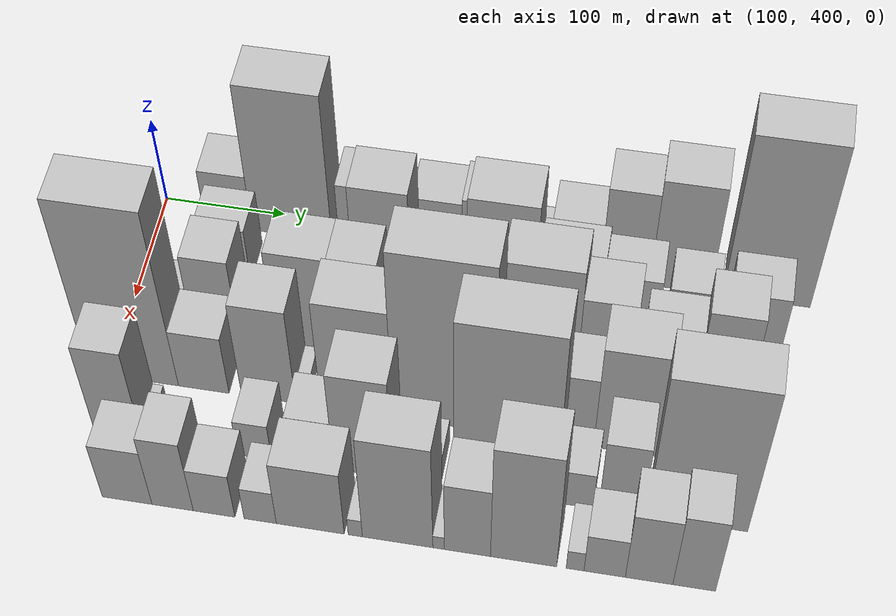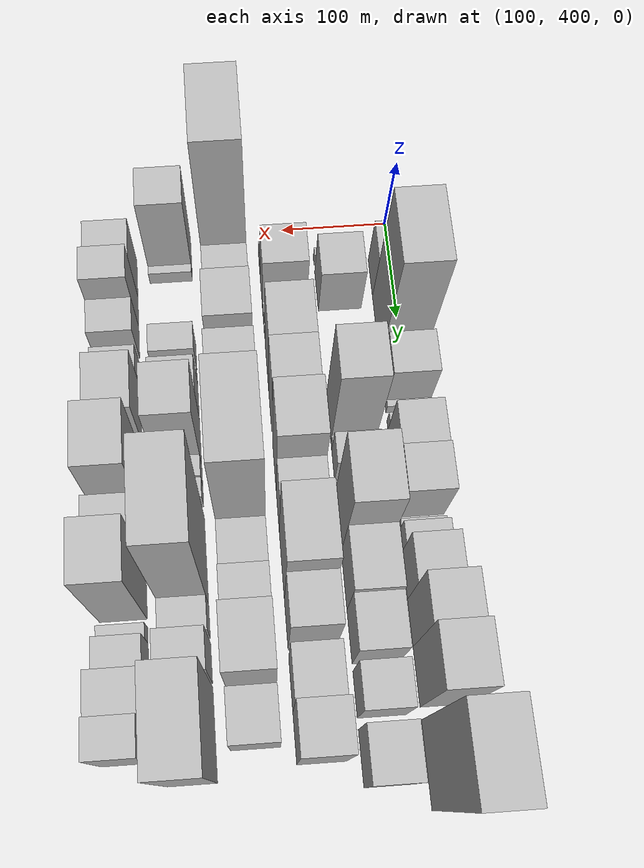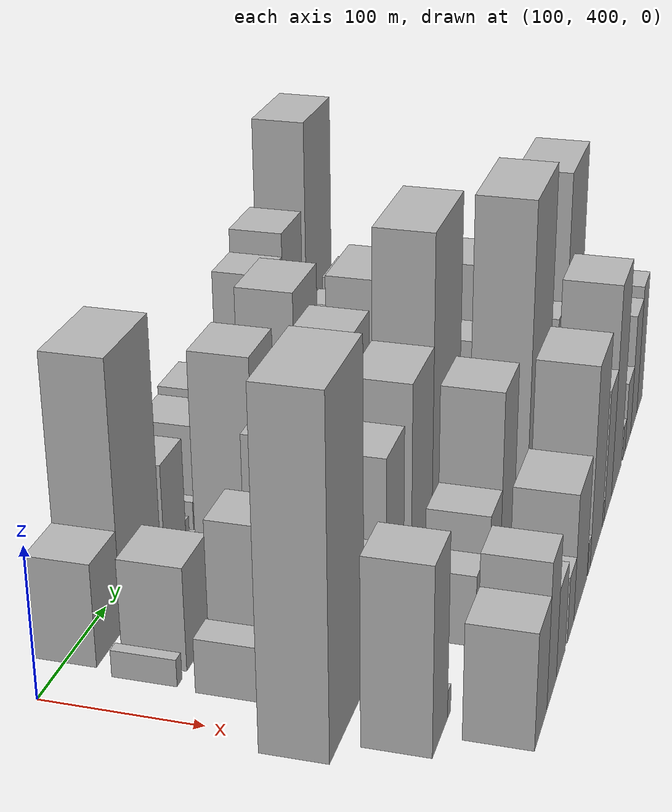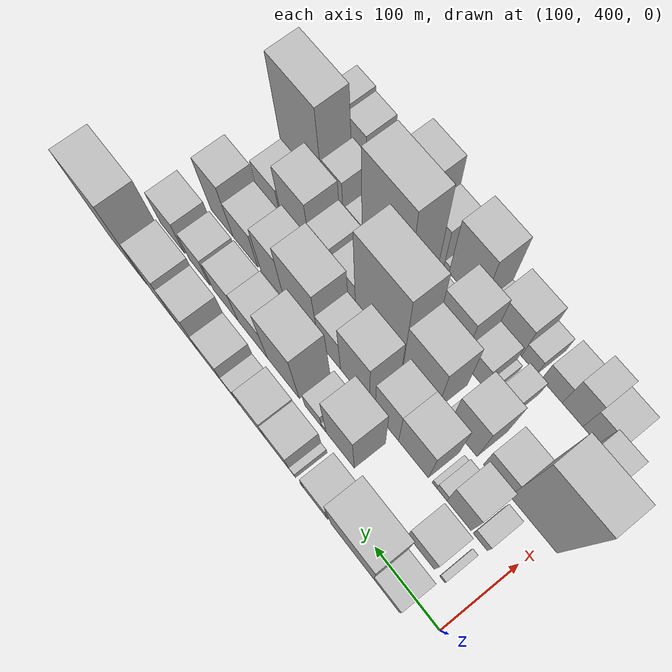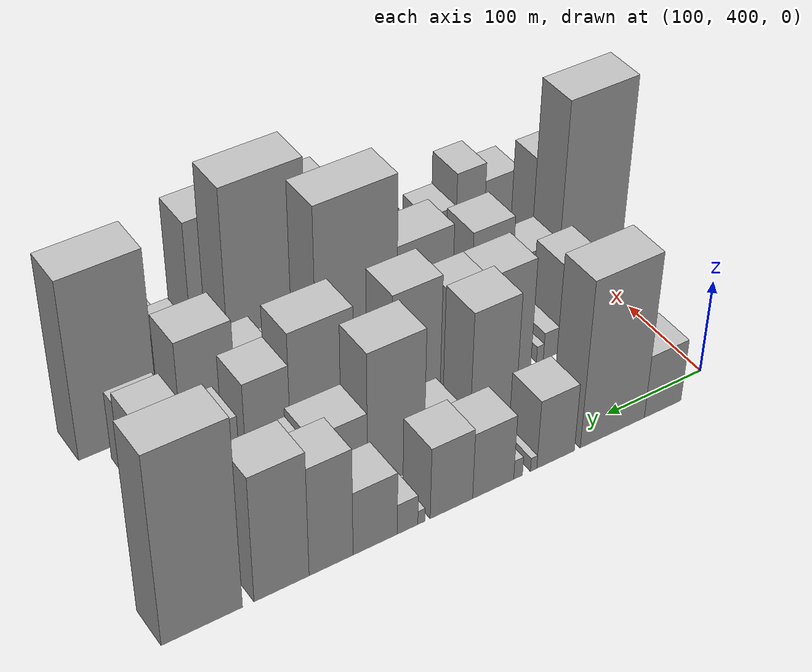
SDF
<sdf version="1.6">
 <world name="default">
  <model name="building_39">
   <static>1</static>
   <pose>100.0000 457.2777 0 0.000000 0.000000 0.000000</pose>
   <link name="link">
    <pose>0 0 34.50 0 0 0</pose>
    <collision name="collision"><geometry><box><size>40.0000 39.1835 69.0000</size></box></geometry></collision>
    <visual name="visual">
     <cast_shadows>0</cast_shadows>
     <geometry><box><size>40.0000 39.1835 69.0000</size></box></geometry>
     <material>
      <script>
       <uri>model://HANNAS_wall/materials/scripts</uri>
       <uri>model://HANNAS_wall/materials/textures</uri>
       <name>vrc/HANNAS_wall</name>
      </script>
     </material>
    </visual>
   </link>
  </model>
  <model name="building_40">
   <static>1</static>
   <pose>100.0000 510.3167 0 0.000000 0.000000 0.000000</pose>
   <link name="link">
    <pose>0 0 90.00 0 0 0</pose>
    <collision name="collision"><geometry><box><size>40.0000 66.8946 180.0000</size></box></geometry></collision>
    <visual name="visual">
     <cast_shadows>0</cast_shadows>
     <geometry><box><size>40.0000 66.8946 180.0000</size></box></geometry>
     <material>
      <script>
       <uri>model://HANNAS_wall/materials/scripts</uri>
       <uri>model://HANNAS_wall/materials/textures</uri>
       <name>vrc/HANNAS_wall</name>
      </script>
     </material>
    </visual>
   </link>
  </model>
  <model name="building_41">
   <static>1</static>
   <pose>100.0000 568.8405 0 0.000000 0.000000 0.000000</pose>
   <link name="link">
    <pose>0 0 37.50 0 0 0</pose>
    <collision name="collision"><geometry><box><size>40.0000 38.1529 75.0000</size></box></geometry></collision>
    <visual name="visual">
     <cast_shadows>0</cast_shadows>
     <geometry><box><size>40.0000 38.1529 75.0000</size></box></geometry>
     <material>
      <script>
       <uri>model://HANNAS_wall/materials/scripts</uri>
       <uri>model://HANNAS_wall/materials/textures</uri>
       <name>vrc/HANNAS_wall</name>
      </script>
     </material>
    </visual>
   </link>
  </model>
  <model name="building_42">
   <static>1</static>
   <pose>100.0000 591.0916 0 0.000000 0.000000 0.000000</pose>
   <link name="link">
    <pose>0 0 7.50 0 0 0</pose>
    <collision name="collision"><geometry><box><size>40.0000 6.3492 15.0000</size></box></geometry></collision>
    <visual name="visual">
     <cast_shadows>0</cast_shadows>
     <geometry><box><size>40.0000 6.3492 15.0000</size></box></geometry>
     <material>
      <script>
       <uri>model://HANNAS_wall/materials/scripts</uri>
       <uri>model://HANNAS_wall/materials/textures</uri>
       <name>vrc/HANNAS_wall</name>
      </script>
     </material>
    </visual>
   </link>
  </model>
  <model name="building_43">
   <static>1</static>
   <pose>100.0000 606.6588 0 0.000000 0.000000 0.000000</pose>
   <link name="link">
    <pose>0 0 10.50 0 0 0</pose>
    <collision name="collision"><geometry><box><size>40.0000 8.7851 21.0000</size></box></geometry></collision>
    <visual name="visual">
     <cast_shadows>0</cast_shadows>
     <geometry><box><size>40.0000 8.7851 21.0000</size></box></geometry>
     <material>
      <script>
       <uri>model://HANNAS_wall/materials/scripts</uri>
       <uri>model://HANNAS_wall/materials/textures</uri>
       <name>vrc/HANNAS_wall</name>
      </script>
     </material>
    </visual>
   </link>
  </model>
  <model name="building_44">
   <static>1</static>
   <pose>100.0000 631.2210 0 0.000000 0.000000 0.000000</pose>
   <link name="link">
    <pose>0 0 36.00 0 0 0</pose>
    <collision name="collision"><geometry><box><size>40.0000 40.3394 72.0000</size></box></geometry></collision>
    <visual name="visual">
     <cast_shadows>0</cast_shadows>
     <geometry><box><size>40.0000 40.3394 72.0000</size></box></geometry>
     <material>
      <script>
       <uri>model://HANNAS_wall/materials/scripts</uri>
       <uri>model://HANNAS_wall/materials/textures</uri>
       <name>vrc/HANNAS_wall</name>
      </script>
     </material>
    </visual>
   </link>
  </model>
  <model name="building_45">
   <static>1</static>
   <pose>100.0000 671.8020 0 0.000000 0.000000 0.000000</pose>
   <link name="link">
    <pose>0 0 39.00 0 0 0</pose>
    <collision name="collision"><geometry><box><size>40.0000 40.8228 78.0000</size></box></geometry></collision>
    <visual name="visual">
     <cast_shadows>0</cast_shadows>
     <geometry><box><size>40.0000 40.8228 78.0000</size></box></geometry>
     <material>
      <script>
       <uri>model://HANNAS_wall/materials/scripts</uri>
       <uri>model://HANNAS_wall/materials/textures</uri>
       <name>vrc/HANNAS_wall</name>
      </script>
     </material>
    </visual>
   </link>
  </model>
  <model name="building_46">
   <static>1</static>
   <pose>100.0000 700.5669 0 0.000000 0.000000 0.000000</pose>
   <link name="link">
    <pose>0 0 7.50 0 0 0</pose>
    <collision name="collision"><geometry><box><size>40.0000 6.7070 15.0000</size></box></geometry></collision>
    <visual name="visual">
     <cast_shadows>0</cast_shadows>
     <geometry><box><size>40.0000 6.7070 15.0000</size></box></geometry>
     <material>
      <script>
       <uri>model://HANNAS_wall/materials/scripts</uri>
       <uri>model://HANNAS_wall/materials/textures</uri>
       <name>vrc/HANNAS_wall</name>
      </script>
     </material>
    </visual>
   </link>
  </model>
  <model name="building_47">
   <static>1</static>
   <pose>100.0000 713.6138 0 0.000000 0.000000 0.000000</pose>
   <link name="link">
    <pose>0 0 16.50 0 0 0</pose>
    <collision name="collision"><geometry><box><size>40.0000 19.3869 33.0000</size></box></geometry></collision>
    <visual name="visual">
     <cast_shadows>0</cast_shadows>
     <geometry><box><size>40.0000 19.3869 33.0000</size></box></geometry>
     <material>
      <script>
       <uri>model://HANNAS_wall/materials/scripts</uri>
       <uri>model://HANNAS_wall/materials/textures</uri>
       <name>vrc/HANNAS_wall</name>
      </script>
     </material>
    </visual>
   </link>
  </model>
  <model name="building_48">
   <static>1</static>
   <pose>100.0000 743.8148 0 0.000000 0.000000 0.000000</pose>
   <link name="link">
    <pose>0 0 34.50 0 0 0</pose>
    <collision name="collision"><geometry><box><size>40.0000 41.0151 69.0000</size></box></geometry></collision>
    <visual name="visual">
     <cast_shadows>0</cast_shadows>
     <geometry><box><size>40.0000 41.0151 69.0000</size></box></geometry>
     <material>
      <script>
       <uri>model://HANNAS_wall/materials/scripts</uri>
       <uri>model://HANNAS_wall/materials/textures</uri>
       <name>vrc/HANNAS_wall</name>
      </script>
     </material>
    </visual>
   </link>
  </model>
  <model name="building_49">
   <static>1</static>
   <pose>100.0000 784.2619 0 0.000000 0.000000 0.000000</pose>
   <link name="link">
    <pose>0 0 58.50 0 0 0</pose>
    <collision name="collision"><geometry><box><size>40.0000 39.8791 117.0000</size></box></geometry></collision>
    <visual name="visual">
     <cast_shadows>0</cast_shadows>
     <geometry><box><size>40.0000 39.8791 117.0000</size></box></geometry>
     <material>
      <script>
       <uri>model://HANNAS_wall/materials/scripts</uri>
       <uri>model://HANNAS_wall/materials/textures</uri>
       <name>vrc/HANNAS_wall</name>
      </script>
     </material>
    </visual>
   </link>
  </model>
  <model name="building_50">
   <static>1</static>
   <pose>100.0000 828.6385 0 0.000000 0.000000 0.000000</pose>
   <link name="link">
    <pose>0 0 67.50 0 0 0</pose>
    <collision name="collision"><geometry><box><size>40.0000 48.8741 135.0000</size></box></geometry></collision>
    <visual name="visual">
     <cast_shadows>0</cast_shadows>
     <geometry><box><size>40.0000 48.8741 135.0000</size></box></geometry>
     <material>
      <script>
       <uri>model://HANNAS_wall/materials/scripts</uri>
       <uri>model://HANNAS_wall/materials/textures</uri>
       <name>vrc/HANNAS_wall</name>
      </script>
     </material>
    </visual>
   </link>
  </model>
  <model name="building_51">
   <static>1</static>
   <pose>100.0000 897.8823 0 0.000000 0.000000 0.000000</pose>
   <link name="link">
    <pose>0 0 100.50 0 0 0</pose>
    <collision name="collision"><geometry><box><size>40.0000 69.6135 201.0000</size></box></geometry></collision>
    <visual name="visual">
     <cast_shadows>0</cast_shadows>
     <geometry><box><size>40.0000 69.6135 201.0000</size></box></geometry>
     <material>
      <script>
       <uri>model://HANNAS_wall/materials/scripts</uri>
       <uri>model://HANNAS_wall/materials/textures</uri>
       <name>vrc/HANNAS_wall</name>
      </script>
     </material>
    </visual>
   </link>
  </model>
  <model name="building_84">
   <static>1</static>
   <pose>152.0000 435.3080 0 0.000000 0.000000 0.000000</pose>
   <link name="link">
    <pose>0 0 9.00 0 0 0</pose>
    <collision name="collision"><geometry><box><size>40.0000 8.0449 18.0000</size></box></geometry></collision>
    <visual name="visual">
     <cast_shadows>0</cast_shadows>
     <geometry><box><size>40.0000 8.0449 18.0000</size></box></geometry>
     <material>
      <script>
       <uri>model://HANNAS_wall/materials/scripts</uri>
       <uri>model://HANNAS_wall/materials/textures</uri>
       <name>vrc/HANNAS_wall</name>
      </script>
     </material>
    </visual>
   </link>
  </model>
  <model name="building_85">
   <static>1</static>
   <pose>152.0000 467.7956 0 0.000000 0.000000 0.000000</pose>
   <link name="link">
    <pose>0 0 34.50 0 0 0</pose>
    <collision name="collision"><geometry><box><size>40.0000 40.9304 69.0000</size></box></geometry></collision>
    <visual name="visual">
     <cast_shadows>0</cast_shadows>
     <geometry><box><size>40.0000 40.9304 69.0000</size></box></geometry>
     <material>
      <script>
       <uri>model://HANNAS_wall/materials/scripts</uri>
       <uri>model://HANNAS_wall/materials/textures</uri>
       <name>vrc/HANNAS_wall</name>
      </script>
     </material>
    </visual>
   </link>
  </model>
  <model name="building_86">
   <static>1</static>
   <pose>152.0000 596.1781 0 0.000000 0.000000 0.000000</pose>
   <link name="link">
    <pose>0 0 72.00 0 0 0</pose>
    <collision name="collision"><geometry><box><size>40.0000 45.9448 144.0000</size></box></geometry></collision>
    <visual name="visual">
     <cast_shadows>0</cast_shadows>
     <geometry><box><size>40.0000 45.9448 144.0000</size></box></geometry>
     <material>
      <script>
       <uri>model://HANNAS_wall/materials/scripts</uri>
       <uri>model://HANNAS_wall/materials/textures</uri>
       <name>vrc/HANNAS_wall</name>
      </script>
     </material>
    </visual>
   </link>
  </model>
  <model name="building_87">
   <static>1</static>
   <pose>152.0000 622.9566 0 0.000000 0.000000 0.000000</pose>
   <link name="link">
    <pose>0 0 9.00 0 0 0</pose>
    <collision name="collision"><geometry><box><size>40.0000 7.6122 18.0000</size></box></geometry></collision>
    <visual name="visual">
     <cast_shadows>0</cast_shadows>
     <geometry><box><size>40.0000 7.6122 18.0000</size></box></geometry>
     <material>
      <script>
       <uri>model://HANNAS_wall/materials/scripts</uri>
       <uri>model://HANNAS_wall/materials/textures</uri>
       <name>vrc/HANNAS_wall</name>
      </script>
     </material>
    </visual>
   </link>
  </model>
  <model name="building_88">
   <static>1</static>
   <pose>152.0000 640.9174 0 0.000000 0.000000 0.000000</pose>
   <link name="link">
    <pose>0 0 24.00 0 0 0</pose>
    <collision name="collision"><geometry><box><size>40.0000 28.3094 48.0000</size></box></geometry></collision>
    <visual name="visual">
     <cast_shadows>0</cast_shadows>
     <geometry><box><size>40.0000 28.3094 48.0000</size></box></geometry>
     <material>
      <script>
       <uri>model://HANNAS_wall/materials/scripts</uri>
       <uri>model://HANNAS_wall/materials/textures</uri>
       <name>vrc/HANNAS_wall</name>
      </script>
     </material>
    </visual>
   </link>
  </model>
  <model name="building_89">
   <static>1</static>
   <pose>152.0000 691.3512 0 0.000000 0.000000 0.000000</pose>
   <link name="link">
    <pose>0 0 75.00 0 0 0</pose>
    <collision name="collision"><geometry><box><size>40.0000 54.5581 150.0000</size></box></geometry></collision>
    <visual name="visual">
     <cast_shadows>0</cast_shadows>
     <geometry><box><size>40.0000 54.5581 150.0000</size></box></geometry>
     <material>
      <script>
       <uri>model://HANNAS_wall/materials/scripts</uri>
       <uri>model://HANNAS_wall/materials/textures</uri>
       <name>vrc/HANNAS_wall</name>
      </script>
     </material>
    </visual>
   </link>
  </model>
  <model name="building_90">
   <static>1</static>
   <pose>152.0000 744.2227 0 0.000000 0.000000 0.000000</pose>
   <link name="link">
    <pose>0 0 43.50 0 0 0</pose>
    <collision name="collision"><geometry><box><size>40.0000 51.1851 87.0000</size></box></geometry></collision>
    <visual name="visual">
     <cast_shadows>0</cast_shadows>
     <geometry><box><size>40.0000 51.1851 87.0000</size></box></geometry>
     <material>
      <script>
       <uri>model://HANNAS_wall/materials/scripts</uri>
       <uri>model://HANNAS_wall/materials/textures</uri>
       <name>vrc/HANNAS_wall</name>
      </script>
     </material>
    </visual>
   </link>
  </model>
  <model name="building_91">
   <static>1</static>
   <pose>152.0000 792.2395 0 0.000000 0.000000 0.000000</pose>
   <link name="link">
    <pose>0 0 39.00 0 0 0</pose>
    <collision name="collision"><geometry><box><size>40.0000 44.8485 78.0000</size></box></geometry></collision>
    <visual name="visual">
     <cast_shadows>0</cast_shadows>
     <geometry><box><size>40.0000 44.8485 78.0000</size></box></geometry>
     <material>
      <script>
       <uri>model://HANNAS_wall/materials/scripts</uri>
       <uri>model://HANNAS_wall/materials/textures</uri>
       <name>vrc/HANNAS_wall</name>
      </script>
     </material>
    </visual>
   </link>
  </model>
  <model name="building_92">
   <static>1</static>
   <pose>152.0000 839.3952 0 0.000000 0.000000 0.000000</pose>
   <link name="link">
    <pose>0 0 36.00 0 0 0</pose>
    <collision name="collision"><geometry><box><size>40.0000 37.4629 72.0000</size></box></geometry></collision>
    <visual name="visual">
     <cast_shadows>0</cast_shadows>
     <geometry><box><size>40.0000 37.4629 72.0000</size></box></geometry>
     <material>
      <script>
       <uri>model://HANNAS_wall/materials/scripts</uri>
       <uri>model://HANNAS_wall/materials/textures</uri>
       <name>vrc/HANNAS_wall</name>
      </script>
     </material>
    </visual>
   </link>
  </model>
  <model name="building_93">
   <static>1</static>
   <pose>152.0000 889.5657 0 0.000000 0.000000 0.000000</pose>
   <link name="link">
    <pose>0 0 39.00 0 0 0</pose>
    <collision name="collision"><geometry><box><size>40.0000 44.8781 78.0000</size></box></geometry></collision>
    <visual name="visual">
     <cast_shadows>0</cast_shadows>
     <geometry><box><size>40.0000 44.8781 78.0000</size></box></geometry>
     <material>
      <script>
       <uri>model://HANNAS_wall/materials/scripts</uri>
       <uri>model://HANNAS_wall/materials/textures</uri>
       <name>vrc/HANNAS_wall</name>
      </script>
     </material>
    </visual>
   </link>
  </model>
  <model name="building_132">
   <static>1</static>
   <pose>204.0000 439.4409 0 0.000000 0.000000 0.000000</pose>
   <link name="link">
    <pose>0 0 18.00 0 0 0</pose>
    <collision name="collision"><geometry><box><size>40.0000 21.4841 36.0000</size></box></geometry></collision>
    <visual name="visual">
     <cast_shadows>0</cast_shadows>
     <geometry><box><size>40.0000 21.4841 36.0000</size></box></geometry>
     <material>
      <script>
       <uri>model://HANNAS_wall/materials/scripts</uri>
       <uri>model://HANNAS_wall/materials/textures</uri>
       <name>vrc/HANNAS_wall</name>
      </script>
     </material>
    </visual>
   </link>
  </model>
  <model name="building_133">
   <static>1</static>
   <pose>204.0000 471.8553 0 0.000000 0.000000 0.000000</pose>
   <link name="link">
    <pose>0 0 49.50 0 0 0</pose>
    <collision name="collision"><geometry><box><size>40.0000 37.3447 99.0000</size></box></geometry></collision>
    <visual name="visual">
     <cast_shadows>0</cast_shadows>
     <geometry><box><size>40.0000 37.3447 99.0000</size></box></geometry>
     <material>
      <script>
       <uri>model://HANNAS_wall/materials/scripts</uri>
       <uri>model://HANNAS_wall/materials/textures</uri>
       <name>vrc/HANNAS_wall</name>
      </script>
     </material>
    </visual>
   </link>
  </model>
  <model name="building_134">
   <static>1</static>
   <pose>204.0000 498.2912 0 0.000000 0.000000 0.000000</pose>
   <link name="link">
    <pose>0 0 15.00 0 0 0</pose>
    <collision name="collision"><geometry><box><size>40.0000 15.5270 30.0000</size></box></geometry></collision>
    <visual name="visual">
     <cast_shadows>0</cast_shadows>
     <geometry><box><size>40.0000 15.5270 30.0000</size></box></geometry>
     <material>
      <script>
       <uri>model://HANNAS_wall/materials/scripts</uri>
       <uri>model://HANNAS_wall/materials/textures</uri>
       <name>vrc/HANNAS_wall</name>
      </script>
     </material>
    </visual>
   </link>
  </model>
  <model name="building_135">
   <static>1</static>
   <pose>204.0000 509.7544 0 0.000000 0.000000 0.000000</pose>
   <link name="link">
    <pose>0 0 9.00 0 0 0</pose>
    <collision name="collision"><geometry><box><size>40.0000 7.3995 18.0000</size></box></geometry></collision>
    <visual name="visual">
     <cast_shadows>0</cast_shadows>
     <geometry><box><size>40.0000 7.3995 18.0000</size></box></geometry>
     <material>
      <script>
       <uri>model://HANNAS_wall/materials/scripts</uri>
       <uri>model://HANNAS_wall/materials/textures</uri>
       <name>vrc/HANNAS_wall</name>
      </script>
     </material>
    </visual>
   </link>
  </model>
  <model name="building_136">
   <static>1</static>
   <pose>204.0000 543.1903 0 0.000000 0.000000 0.000000</pose>
   <link name="link">
    <pose>0 0 60.00 0 0 0</pose>
    <collision name="collision"><geometry><box><size>40.0000 47.4723 120.0000</size></box></geometry></collision>
    <visual name="visual">
     <cast_shadows>0</cast_shadows>
     <geometry><box><size>40.0000 47.4723 120.0000</size></box></geometry>
     <material>
      <script>
       <uri>model://HANNAS_wall/materials/scripts</uri>
       <uri>model://HANNAS_wall/materials/textures</uri>
       <name>vrc/HANNAS_wall</name>
      </script>
     </material>
    </visual>
   </link>
  </model>
  <model name="building_137">
   <static>1</static>
   <pose>204.0000 585.9766 0 0.000000 0.000000 0.000000</pose>
   <link name="link">
    <pose>0 0 60.00 0 0 0</pose>
    <collision name="collision"><geometry><box><size>40.0000 38.1003 120.0000</size></box></geometry></collision>
    <visual name="visual">
     <cast_shadows>0</cast_shadows>
     <geometry><box><size>40.0000 38.1003 120.0000</size></box></geometry>
     <material>
      <script>
       <uri>model://HANNAS_wall/materials/scripts</uri>
       <uri>model://HANNAS_wall/materials/textures</uri>
       <name>vrc/HANNAS_wall</name>
      </script>
     </material>
    </visual>
   </link>
  </model>
  <model name="building_138">
   <static>1</static>
   <pose>204.0000 638.0210 0 0.000000 0.000000 0.000000</pose>
   <link name="link">
    <pose>0 0 72.00 0 0 0</pose>
    <collision name="collision"><geometry><box><size>40.0000 47.9886 144.0000</size></box></geometry></collision>
    <visual name="visual">
     <cast_shadows>0</cast_shadows>
     <geometry><box><size>40.0000 47.9886 144.0000</size></box></geometry>
     <material>
      <script>
       <uri>model://HANNAS_wall/materials/scripts</uri>
       <uri>model://HANNAS_wall/materials/textures</uri>
       <name>vrc/HANNAS_wall</name>
      </script>
     </material>
    </visual>
   </link>
  </model>
  <model name="building_139">
   <static>1</static>
   <pose>204.0000 680.3534 0 0.000000 0.000000 0.000000</pose>
   <link name="link">
    <pose>0 0 46.50 0 0 0</pose>
    <collision name="collision"><geometry><box><size>40.0000 36.6762 93.0000</size></box></geometry></collision>
    <visual name="visual">
     <cast_shadows>0</cast_shadows>
     <geometry><box><size>40.0000 36.6762 93.0000</size></box></geometry>
     <material>
      <script>
       <uri>model://HANNAS_wall/materials/scripts</uri>
       <uri>model://HANNAS_wall/materials/textures</uri>
       <name>vrc/HANNAS_wall</name>
      </script>
     </material>
    </visual>
   </link>
  </model>
  <model name="building_140">
   <static>1</static>
   <pose>204.0000 728.6289 0 0.000000 0.000000 0.000000</pose>
   <link name="link">
    <pose>0 0 75.00 0 0 0</pose>
    <collision name="collision"><geometry><box><size>40.0000 59.8748 150.0000</size></box></geometry></collision>
    <visual name="visual">
     <cast_shadows>0</cast_shadows>
     <geometry><box><size>40.0000 59.8748 150.0000</size></box></geometry>
     <material>
      <script>
       <uri>model://HANNAS_wall/materials/scripts</uri>
       <uri>model://HANNAS_wall/materials/textures</uri>
       <name>vrc/HANNAS_wall</name>
      </script>
     </material>
    </visual>
   </link>
  </model>
  <model name="building_141">
   <static>1</static>
   <pose>204.0000 779.1070 0 0.000000 0.000000 0.000000</pose>
   <link name="link">
    <pose>0 0 58.50 0 0 0</pose>
    <collision name="collision"><geometry><box><size>40.0000 41.0813 117.0000</size></box></geometry></collision>
    <visual name="visual">
     <cast_shadows>0</cast_shadows>
     <geometry><box><size>40.0000 41.0813 117.0000</size></box></geometry>
     <material>
      <script>
       <uri>model://HANNAS_wall/materials/scripts</uri>
       <uri>model://HANNAS_wall/materials/textures</uri>
       <name>vrc/HANNAS_wall</name>
      </script>
     </material>
    </visual>
   </link>
  </model>
  <model name="building_142">
   <static>1</static>
   <pose>204.0000 827.8678 0 0.000000 0.000000 0.000000</pose>
   <link name="link">
    <pose>0 0 43.50 0 0 0</pose>
    <collision name="collision"><geometry><box><size>40.0000 44.4403 87.0000</size></box></geometry></collision>
    <visual name="visual">
     <cast_shadows>0</cast_shadows>
     <geometry><box><size>40.0000 44.4403 87.0000</size></box></geometry>
     <material>
      <script>
       <uri>model://HANNAS_wall/materials/scripts</uri>
       <uri>model://HANNAS_wall/materials/textures</uri>
       <name>vrc/HANNAS_wall</name>
      </script>
     </material>
    </visual>
   </link>
  </model>
  <model name="building_143">
   <static>1</static>
   <pose>204.0000 870.4710 0 0.000000 0.000000 0.000000</pose>
   <link name="link">
    <pose>0 0 61.50 0 0 0</pose>
    <collision name="collision"><geometry><box><size>40.0000 40.7661 123.0000</size></box></geometry></collision>
    <visual name="visual">
     <cast_shadows>0</cast_shadows>
     <geometry><box><size>40.0000 40.7661 123.0000</size></box></geometry>
     <material>
      <script>
       <uri>model://HANNAS_wall/materials/scripts</uri>
       <uri>model://HANNAS_wall/materials/textures</uri>
       <name>vrc/HANNAS_wall</name>
      </script>
     </material>
    </visual>
   </link>
  </model>
  <model name="building_178">
   <static>1</static>
   <pose>256.0000 419.7540 0 0.000000 0.000000 0.000000</pose>
   <link name="link">
    <pose>0 0 111.00 0 0 0</pose>
    <collision name="collision"><geometry><box><size>40.0000 70.8649 222.0000</size></box></geometry></collision>
    <visual name="visual">
     <cast_shadows>0</cast_shadows>
     <geometry><box><size>40.0000 70.8649 222.0000</size></box></geometry>
     <material>
      <script>
       <uri>model://HANNAS_wall/materials/scripts</uri>
       <uri>model://HANNAS_wall/materials/textures</uri>
       <name>vrc/HANNAS_wall</name>
      </script>
     </material>
    </visual>
   </link>
  </model>
  <model name="building_179">
   <static>1</static>
   <pose>256.0000 475.2709 0 0.000000 0.000000 0.000000</pose>
   <link name="link">
    <pose>0 0 37.50 0 0 0</pose>
    <collision name="collision"><geometry><box><size>40.0000 40.1690 75.0000</size></box></geometry></collision>
    <visual name="visual">
     <cast_shadows>0</cast_shadows>
     <geometry><box><size>40.0000 40.1690 75.0000</size></box></geometry>
     <material>
      <script>
       <uri>model://HANNAS_wall/materials/scripts</uri>
       <uri>model://HANNAS_wall/materials/textures</uri>
       <name>vrc/HANNAS_wall</name>
      </script>
     </material>
    </visual>
   </link>
  </model>
  <model name="building_180">
   <static>1</static>
   <pose>256.0000 526.7182 0 0.000000 0.000000 0.000000</pose>
   <link name="link">
    <pose>0 0 61.50 0 0 0</pose>
    <collision name="collision"><geometry><box><size>40.0000 42.7256 123.0000</size></box></geometry></collision>
    <visual name="visual">
     <cast_shadows>0</cast_shadows>
     <geometry><box><size>40.0000 42.7256 123.0000</size></box></geometry>
     <material>
      <script>
       <uri>model://HANNAS_wall/materials/scripts</uri>
       <uri>model://HANNAS_wall/materials/textures</uri>
       <name>vrc/HANNAS_wall</name>
      </script>
     </material>
    </visual>
   </link>
  </model>
  <model name="building_181">
   <static>1</static>
   <pose>256.0000 553.0272 0 0.000000 0.000000 0.000000</pose>
   <link name="link">
    <pose>0 0 10.50 0 0 0</pose>
    <collision name="collision"><geometry><box><size>40.0000 9.8925 21.0000</size></box></geometry></collision>
    <visual name="visual">
     <cast_shadows>0</cast_shadows>
     <geometry><box><size>40.0000 9.8925 21.0000</size></box></geometry>
     <material>
      <script>
       <uri>model://HANNAS_wall/materials/scripts</uri>
       <uri>model://HANNAS_wall/materials/textures</uri>
       <name>vrc/HANNAS_wall</name>
      </script>
     </material>
    </visual>
   </link>
  </model>
  <model name="building_182">
   <static>1</static>
   <pose>256.0000 595.9473 0 0.000000 0.000000 0.000000</pose>
   <link name="link">
    <pose>0 0 70.50 0 0 0</pose>
    <collision name="collision"><geometry><box><size>40.0000 55.9476 141.0000</size></box></geometry></collision>
    <visual name="visual">
     <cast_shadows>0</cast_shadows>
     <geometry><box><size>40.0000 55.9476 141.0000</size></box></geometry>
     <material>
      <script>
       <uri>model://HANNAS_wall/materials/scripts</uri>
       <uri>model://HANNAS_wall/materials/textures</uri>
       <name>vrc/HANNAS_wall</name>
      </script>
     </material>
    </visual>
   </link>
  </model>
  <model name="building_183">
   <static>1</static>
   <pose>256.0000 663.4842 0 0.000000 0.000000 0.000000</pose>
   <link name="link">
    <pose>0 0 108.00 0 0 0</pose>
    <collision name="collision"><geometry><box><size>40.0000 79.1262 216.0000</size></box></geometry></collision>
    <visual name="visual">
     <cast_shadows>0</cast_shadows>
     <geometry><box><size>40.0000 79.1262 216.0000</size></box></geometry>
     <material>
      <script>
       <uri>model://HANNAS_wall/materials/scripts</uri>
       <uri>model://HANNAS_wall/materials/textures</uri>
       <name>vrc/HANNAS_wall</name>
      </script>
     </material>
    </visual>
   </link>
  </model>
  <model name="building_184">
   <static>1</static>
   <pose>256.0000 723.3203 0 0.000000 0.000000 0.000000</pose>
   <link name="link">
    <pose>0 0 37.50 0 0 0</pose>
    <collision name="collision"><geometry><box><size>40.0000 40.5461 75.0000</size></box></geometry></collision>
    <visual name="visual">
     <cast_shadows>0</cast_shadows>
     <geometry><box><size>40.0000 40.5461 75.0000</size></box></geometry>
     <material>
      <script>
       <uri>model://HANNAS_wall/materials/scripts</uri>
       <uri>model://HANNAS_wall/materials/textures</uri>
       <name>vrc/HANNAS_wall</name>
      </script>
     </material>
    </visual>
   </link>
  </model>
  <model name="building_185">
   <static>1</static>
   <pose>256.0000 761.3378 0 0.000000 0.000000 0.000000</pose>
   <link name="link">
    <pose>0 0 46.50 0 0 0</pose>
    <collision name="collision"><geometry><box><size>40.0000 35.4888 93.0000</size></box></geometry></collision>
    <visual name="visual">
     <cast_shadows>0</cast_shadows>
     <geometry><box><size>40.0000 35.4888 93.0000</size></box></geometry>
     <material>
      <script>
       <uri>model://HANNAS_wall/materials/scripts</uri>
       <uri>model://HANNAS_wall/materials/textures</uri>
       <name>vrc/HANNAS_wall</name>
      </script>
     </material>
    </visual>
   </link>
  </model>
  <model name="building_186">
   <static>1</static>
   <pose>256.0000 804.6435 0 0.000000 0.000000 0.000000</pose>
   <link name="link">
    <pose>0 0 67.50 0 0 0</pose>
    <collision name="collision"><geometry><box><size>40.0000 51.1228 135.0000</size></box></geometry></collision>
    <visual name="visual">
     <cast_shadows>0</cast_shadows>
     <geometry><box><size>40.0000 51.1228 135.0000</size></box></geometry>
     <material>
      <script>
       <uri>model://HANNAS_wall/materials/scripts</uri>
       <uri>model://HANNAS_wall/materials/textures</uri>
       <name>vrc/HANNAS_wall</name>
      </script>
     </material>
    </visual>
   </link>
  </model>
  <model name="building_187">
   <static>1</static>
   <pose>256.0000 854.7645 0 0.000000 0.000000 0.000000</pose>
   <link name="link">
    <pose>0 0 37.50 0 0 0</pose>
    <collision name="collision"><geometry><box><size>40.0000 43.1191 75.0000</size></box></geometry></collision>
    <visual name="visual">
     <cast_shadows>0</cast_shadows>
     <geometry><box><size>40.0000 43.1191 75.0000</size></box></geometry>
     <material>
      <script>
       <uri>model://HANNAS_wall/materials/scripts</uri>
       <uri>model://HANNAS_wall/materials/textures</uri>
       <name>vrc/HANNAS_wall</name>
      </script>
     </material>
    </visual>
   </link>
  </model>
  <model name="building_224">
   <static>1</static>
   <pose>308.0000 421.7507 0 0.000000 0.000000 0.000000</pose>
   <link name="link">
    <pose>0 0 60.00 0 0 0</pose>
    <collision name="collision"><geometry><box><size>40.0000 36.8586 120.0000</size></box></geometry></collision>
    <visual name="visual">
     <cast_shadows>0</cast_shadows>
     <geometry><box><size>40.0000 36.8586 120.0000</size></box></geometry>
     <material>
      <script>
       <uri>model://HANNAS_wall/materials/scripts</uri>
       <uri>model://HANNAS_wall/materials/textures</uri>
       <name>vrc/HANNAS_wall</name>
      </script>
     </material>
    </visual>
   </link>
  </model>
  <model name="building_225">
   <static>1</static>
   <pose>308.0000 444.3094 0 0.000000 0.000000 0.000000</pose>
   <link name="link">
    <pose>0 0 9.00 0 0 0</pose>
    <collision name="collision"><geometry><box><size>40.0000 8.2589 18.0000</size></box></geometry></collision>
    <visual name="visual">
     <cast_shadows>0</cast_shadows>
     <geometry><box><size>40.0000 8.2589 18.0000</size></box></geometry>
     <material>
      <script>
       <uri>model://HANNAS_wall/materials/scripts</uri>
       <uri>model://HANNAS_wall/materials/textures</uri>
       <name>vrc/HANNAS_wall</name>
      </script>
     </material>
    </visual>
   </link>
  </model>
  <model name="building_226">
   <static>1</static>
   <pose>308.0000 527.8548 0 0.000000 0.000000 0.000000</pose>
   <link name="link">
    <pose>0 0 24.00 0 0 0</pose>
    <collision name="collision"><geometry><box><size>40.0000 26.2772 48.0000</size></box></geometry></collision>
    <visual name="visual">
     <cast_shadows>0</cast_shadows>
     <geometry><box><size>40.0000 26.2772 48.0000</size></box></geometry>
     <material>
      <script>
       <uri>model://HANNAS_wall/materials/scripts</uri>
       <uri>model://HANNAS_wall/materials/textures</uri>
       <name>vrc/HANNAS_wall</name>
      </script>
     </material>
    </visual>
   </link>
  </model>
  <model name="building_227">
   <static>1</static>
   <pose>308.0000 550.3058 0 0.000000 0.000000 0.000000</pose>
   <link name="link">
    <pose>0 0 10.50 0 0 0</pose>
    <collision name="collision"><geometry><box><size>40.0000 8.6249 21.0000</size></box></geometry></collision>
    <visual name="visual">
     <cast_shadows>0</cast_shadows>
     <geometry><box><size>40.0000 8.6249 21.0000</size></box></geometry>
     <material>
      <script>
       <uri>model://HANNAS_wall/materials/scripts</uri>
       <uri>model://HANNAS_wall/materials/textures</uri>
       <name>vrc/HANNAS_wall</name>
      </script>
     </material>
    </visual>
   </link>
  </model>
  <model name="building_228">
   <static>1</static>
   <pose>308.0000 571.7984 0 0.000000 0.000000 0.000000</pose>
   <link name="link">
    <pose>0 0 33.00 0 0 0</pose>
    <collision name="collision"><geometry><box><size>40.0000 34.3603 66.0000</size></box></geometry></collision>
    <visual name="visual">
     <cast_shadows>0</cast_shadows>
     <geometry><box><size>40.0000 34.3603 66.0000</size></box></geometry>
     <material>
      <script>
       <uri>model://HANNAS_wall/materials/scripts</uri>
       <uri>model://HANNAS_wall/materials/textures</uri>
       <name>vrc/HANNAS_wall</name>
      </script>
     </material>
    </visual>
   </link>
  </model>
  <model name="building_229">
   <static>1</static>
   <pose>308.0000 611.2031 0 0.000000 0.000000 0.000000</pose>
   <link name="link">
    <pose>0 0 66.00 0 0 0</pose>
    <collision name="collision"><geometry><box><size>40.0000 44.4492 132.0000</size></box></geometry></collision>
    <visual name="visual">
     <cast_shadows>0</cast_shadows>
     <geometry><box><size>40.0000 44.4492 132.0000</size></box></geometry>
     <material>
      <script>
       <uri>model://HANNAS_wall/materials/scripts</uri>
       <uri>model://HANNAS_wall/materials/textures</uri>
       <name>vrc/HANNAS_wall</name>
      </script>
     </material>
    </visual>
   </link>
  </model>
  <model name="building_230">
   <static>1</static>
   <pose>308.0000 643.0932 0 0.000000 0.000000 0.000000</pose>
   <link name="link">
    <pose>0 0 16.50 0 0 0</pose>
    <collision name="collision"><geometry><box><size>40.0000 19.3310 33.0000</size></box></geometry></collision>
    <visual name="visual">
     <cast_shadows>0</cast_shadows>
     <geometry><box><size>40.0000 19.3310 33.0000</size></box></geometry>
     <material>
      <script>
       <uri>model://HANNAS_wall/materials/scripts</uri>
       <uri>model://HANNAS_wall/materials/textures</uri>
       <name>vrc/HANNAS_wall</name>
      </script>
     </material>
    </visual>
   </link>
  </model>
  <model name="building_231">
   <static>1</static>
   <pose>308.0000 661.7024 0 0.000000 0.000000 0.000000</pose>
   <link name="link">
    <pose>0 0 15.00 0 0 0</pose>
    <collision name="collision"><geometry><box><size>40.0000 17.8874 30.0000</size></box></geometry></collision>
    <visual name="visual">
     <cast_shadows>0</cast_shadows>
     <geometry><box><size>40.0000 17.8874 30.0000</size></box></geometry>
     <material>
      <script>
       <uri>model://HANNAS_wall/materials/scripts</uri>
       <uri>model://HANNAS_wall/materials/textures</uri>
       <name>vrc/HANNAS_wall</name>
      </script>
     </material>
    </visual>
   </link>
  </model>
  <model name="building_232">
   <static>1</static>
   <pose>308.0000 719.0692 0 0.000000 0.000000 0.000000</pose>
   <link name="link">
    <pose>0 0 111.00 0 0 0</pose>
    <collision name="collision"><geometry><box><size>40.0000 76.8463 222.0000</size></box></geometry></collision>
    <visual name="visual">
     <cast_shadows>0</cast_shadows>
     <geometry><box><size>40.0000 76.8463 222.0000</size></box></geometry>
     <material>
      <script>
       <uri>model://HANNAS_wall/materials/scripts</uri>
       <uri>model://HANNAS_wall/materials/textures</uri>
       <name>vrc/HANNAS_wall</name>
      </script>
     </material>
    </visual>
   </link>
  </model>
  <model name="building_233">
   <static>1</static>
   <pose>308.0000 771.5807 0 0.000000 0.000000 0.000000</pose>
   <link name="link">
    <pose>0 0 24.00 0 0 0</pose>
    <collision name="collision"><geometry><box><size>40.0000 28.1767 48.0000</size></box></geometry></collision>
    <visual name="visual">
     <cast_shadows>0</cast_shadows>
     <geometry><box><size>40.0000 28.1767 48.0000</size></box></geometry>
     <material>
      <script>
       <uri>model://HANNAS_wall/materials/scripts</uri>
       <uri>model://HANNAS_wall/materials/textures</uri>
       <name>vrc/HANNAS_wall</name>
      </script>
     </material>
    </visual>
   </link>
  </model>
  <model name="building_234">
   <static>1</static>
   <pose>308.0000 806.1408 0 0.000000 0.000000 0.000000</pose>
   <link name="link">
    <pose>0 0 48.00 0 0 0</pose>
    <collision name="collision"><geometry><box><size>40.0000 32.9436 96.0000</size></box></geometry></collision>
    <visual name="visual">
     <cast_shadows>0</cast_shadows>
     <geometry><box><size>40.0000 32.9436 96.0000</size></box></geometry>
     <material>
      <script>
       <uri>model://HANNAS_wall/materials/scripts</uri>
       <uri>model://HANNAS_wall/materials/textures</uri>
       <name>vrc/HANNAS_wall</name>
      </script>
     </material>
    </visual>
   </link>
  </model>
  <model name="building_235">
   <static>1</static>
   <pose>308.0000 862.9750 0 0.000000 0.000000 0.000000</pose>
   <link name="link">
    <pose>0 0 96.00 0 0 0</pose>
    <collision name="collision"><geometry><box><size>40.0000 74.7247 192.0000</size></box></geometry></collision>
    <visual name="visual">
     <cast_shadows>0</cast_shadows>
     <geometry><box><size>40.0000 74.7247 192.0000</size></box></geometry>
     <material>
      <script>
       <uri>model://HANNAS_wall/materials/scripts</uri>
       <uri>model://HANNAS_wall/materials/textures</uri>
       <name>vrc/HANNAS_wall</name>
      </script>
     </material>
    </visual>
   </link>
  </model>
  <model name="building_271">
   <static>1</static>
   <pose>360.0000 442.6445 0 0.000000 0.000000 0.000000</pose>
   <link name="link">
    <pose>0 0 37.50 0 0 0</pose>
    <collision name="collision"><geometry><box><size>40.0000 38.1946 75.0000</size></box></geometry></collision>
    <visual name="visual">
     <cast_shadows>0</cast_shadows>
     <geometry><box><size>40.0000 38.1946 75.0000</size></box></geometry>
     <material>
      <script>
       <uri>model://HANNAS_wall/materials/scripts</uri>
       <uri>model://HANNAS_wall/materials/textures</uri>
       <name>vrc/HANNAS_wall</name>
      </script>
     </material>
    </visual>
   </link>
  </model>
  <model name="building_272">
   <static>1</static>
   <pose>360.0000 477.5299 0 0.000000 0.000000 0.000000</pose>
   <link name="link">
    <pose>0 0 48.00 0 0 0</pose>
    <collision name="collision"><geometry><box><size>40.0000 31.5763 96.0000</size></box></geometry></collision>
    <visual name="visual">
     <cast_shadows>0</cast_shadows>
     <geometry><box><size>40.0000 31.5763 96.0000</size></box></geometry>
     <material>
      <script>
       <uri>model://HANNAS_wall/materials/scripts</uri>
       <uri>model://HANNAS_wall/materials/textures</uri>
       <name>vrc/HANNAS_wall</name>
      </script>
     </material>
    </visual>
   </link>
  </model>
  <model name="building_273">
   <static>1</static>
   <pose>360.0000 509.1891 0 0.000000 0.000000 0.000000</pose>
   <link name="link">
    <pose>0 0 30.00 0 0 0</pose>
    <collision name="collision"><geometry><box><size>40.0000 31.7421 60.0000</size></box></geometry></collision>
    <visual name="visual">
     <cast_shadows>0</cast_shadows>
     <geometry><box><size>40.0000 31.7421 60.0000</size></box></geometry>
     <material>
      <script>
       <uri>model://HANNAS_wall/materials/scripts</uri>
       <uri>model://HANNAS_wall/materials/textures</uri>
       <name>vrc/HANNAS_wall</name>
      </script>
     </material>
    </visual>
   </link>
  </model>
  <model name="building_274">
   <static>1</static>
   <pose>360.0000 544.2414 0 0.000000 0.000000 0.000000</pose>
   <link name="link">
    <pose>0 0 22.50 0 0 0</pose>
    <collision name="collision"><geometry><box><size>40.0000 24.3625 45.0000</size></box></geometry></collision>
    <visual name="visual">
     <cast_shadows>0</cast_shadows>
     <geometry><box><size>40.0000 24.3625 45.0000</size></box></geometry>
     <material>
      <script>
       <uri>model://HANNAS_wall/materials/scripts</uri>
       <uri>model://HANNAS_wall/materials/textures</uri>
       <name>vrc/HANNAS_wall</name>
      </script>
     </material>
    </visual>
   </link>
  </model>
  <model name="building_275">
   <static>1</static>
   <pose>360.0000 582.0199 0 0.000000 0.000000 0.000000</pose>
   <link name="link">
    <pose>0 0 43.50 0 0 0</pose>
    <collision name="collision"><geometry><box><size>40.0000 51.1946 87.0000</size></box></geometry></collision>
    <visual name="visual">
     <cast_shadows>0</cast_shadows>
     <geometry><box><size>40.0000 51.1946 87.0000</size></box></geometry>
     <material>
      <script>
       <uri>model://HANNAS_wall/materials/scripts</uri>
       <uri>model://HANNAS_wall/materials/textures</uri>
       <name>vrc/HANNAS_wall</name>
      </script>
     </material>
    </visual>
   </link>
  </model>
  <model name="building_276">
   <static>1</static>
   <pose>360.0000 615.9206 0 0.000000 0.000000 0.000000</pose>
   <link name="link">
    <pose>0 0 12.00 0 0 0</pose>
    <collision name="collision"><geometry><box><size>40.0000 10.6067 24.0000</size></box></geometry></collision>
    <visual name="visual">
     <cast_shadows>0</cast_shadows>
     <geometry><box><size>40.0000 10.6067 24.0000</size></box></geometry>
     <material>
      <script>
       <uri>model://HANNAS_wall/materials/scripts</uri>
       <uri>model://HANNAS_wall/materials/textures</uri>
       <name>vrc/HANNAS_wall</name>
      </script>
     </material>
    </visual>
   </link>
  </model>
  <model name="building_277">
   <static>1</static>
   <pose>360.0000 647.5702 0 0.000000 0.000000 0.000000</pose>
   <link name="link">
    <pose>0 0 70.50 0 0 0</pose>
    <collision name="collision"><geometry><box><size>40.0000 52.6925 141.0000</size></box></geometry></collision>
    <visual name="visual">
     <cast_shadows>0</cast_shadows>
     <geometry><box><size>40.0000 52.6925 141.0000</size></box></geometry>
     <material>
      <script>
       <uri>model://HANNAS_wall/materials/scripts</uri>
       <uri>model://HANNAS_wall/materials/textures</uri>
       <name>vrc/HANNAS_wall</name>
      </script>
     </material>
    </visual>
   </link>
  </model>
  <model name="building_278">
   <static>1</static>
   <pose>360.0000 678.1986 0 0.000000 0.000000 0.000000</pose>
   <link name="link">
    <pose>0 0 9.00 0 0 0</pose>
    <collision name="collision"><geometry><box><size>40.0000 8.5642 18.0000</size></box></geometry></collision>
    <visual name="visual">
     <cast_shadows>0</cast_shadows>
     <geometry><box><size>40.0000 8.5642 18.0000</size></box></geometry>
     <material>
      <script>
       <uri>model://HANNAS_wall/materials/scripts</uri>
       <uri>model://HANNAS_wall/materials/textures</uri>
       <name>vrc/HANNAS_wall</name>
      </script>
     </material>
    </visual>
   </link>
  </model>
  <model name="building_279">
   <static>1</static>
   <pose>360.0000 699.5929 0 0.000000 0.000000 0.000000</pose>
   <link name="link">
    <pose>0 0 48.00 0 0 0</pose>
    <collision name="collision"><geometry><box><size>40.0000 34.2245 96.0000</size></box></geometry></collision>
    <visual name="visual">
     <cast_shadows>0</cast_shadows>
     <geometry><box><size>40.0000 34.2245 96.0000</size></box></geometry>
     <material>
      <script>
       <uri>model://HANNAS_wall/materials/scripts</uri>
       <uri>model://HANNAS_wall/materials/textures</uri>
       <name>vrc/HANNAS_wall</name>
      </script>
     </material>
    </visual>
   </link>
  </model>
  <model name="building_280">
   <static>1</static>
   <pose>360.0000 741.1466 0 0.000000 0.000000 0.000000</pose>
   <link name="link">
    <pose>0 0 78.00 0 0 0</pose>
    <collision name="collision"><geometry><box><size>40.0000 48.8828 156.0000</size></box></geometry></collision>
    <visual name="visual">
     <cast_shadows>0</cast_shadows>
     <geometry><box><size>40.0000 48.8828 156.0000</size></box></geometry>
     <material>
      <script>
       <uri>model://HANNAS_wall/materials/scripts</uri>
       <uri>model://HANNAS_wall/materials/textures</uri>
       <name>vrc/HANNAS_wall</name>
      </script>
     </material>
    </visual>
   </link>
  </model>
  <model name="building_281">
   <static>1</static>
   <pose>360.0000 779.1119 0 0.000000 0.000000 0.000000</pose>
   <link name="link">
    <pose>0 0 13.50 0 0 0</pose>
    <collision name="collision"><geometry><box><size>40.0000 13.0479 27.0000</size></box></geometry></collision>
    <visual name="visual">
     <cast_shadows>0</cast_shadows>
     <geometry><box><size>40.0000 13.0479 27.0000</size></box></geometry>
     <material>
      <script>
       <uri>model://HANNAS_wall/materials/scripts</uri>
       <uri>model://HANNAS_wall/materials/textures</uri>
       <name>vrc/HANNAS_wall</name>
      </script>
     </material>
    </visual>
   </link>
  </model>
  <model name="building_282">
   <static>1</static>
   <pose>360.0000 800.7423 0 0.000000 0.000000 0.000000</pose>
   <link name="link">
    <pose>0 0 27.00 0 0 0</pose>
    <collision name="collision"><geometry><box><size>40.0000 30.2127 54.0000</size></box></geometry></collision>
    <visual name="visual">
     <cast_shadows>0</cast_shadows>
     <geometry><box><size>40.0000 30.2127 54.0000</size></box></geometry>
     <material>
      <script>
       <uri>model://HANNAS_wall/materials/scripts</uri>
       <uri>model://HANNAS_wall/materials/textures</uri>
       <name>vrc/HANNAS_wall</name>
      </script>
     </material>
    </visual>
   </link>
  </model>
  <model name="building_283">
   <static>1</static>
   <pose>360.0000 833.1646 0 0.000000 0.000000 0.000000</pose>
   <link name="link">
    <pose>0 0 46.50 0 0 0</pose>
    <collision name="collision"><geometry><box><size>40.0000 34.6318 93.0000</size></box></geometry></collision>
    <visual name="visual">
     <cast_shadows>0</cast_shadows>
     <geometry><box><size>40.0000 34.6318 93.0000</size></box></geometry>
     <material>
      <script>
       <uri>model://HANNAS_wall/materials/scripts</uri>
       <uri>model://HANNAS_wall/materials/textures</uri>
       <name>vrc/HANNAS_wall</name>
      </script>
     </material>
    </visual>
   </link>
  </model>
  <model name="building_284">
   <static>1</static>
   <pose>360.0000 865.9781 0 0.000000 0.000000 0.000000</pose>
   <link name="link">
    <pose>0 0 51.00 0 0 0</pose>
    <collision name="collision"><geometry><box><size>40.0000 30.9952 102.0000</size></box></geometry></collision>
    <visual name="visual">
     <cast_shadows>0</cast_shadows>
     <geometry><box><size>40.0000 30.9952 102.0000</size></box></geometry>
     <material>
      <script>
       <uri>model://HANNAS_wall/materials/scripts</uri>
       <uri>model://HANNAS_wall/materials/textures</uri>
       <name>vrc/HANNAS_wall</name>
      </script>
     </material>
    </visual>
   </link>
  </model>
 </world>
</sdf>
